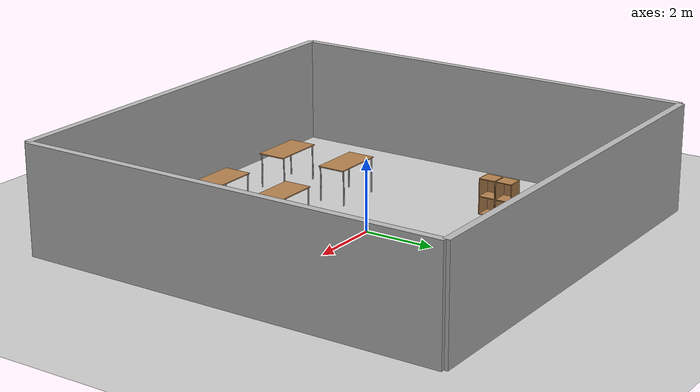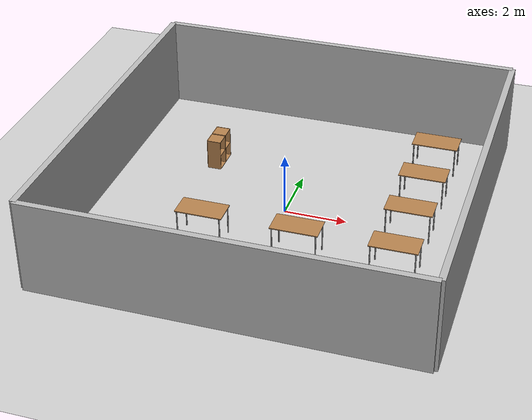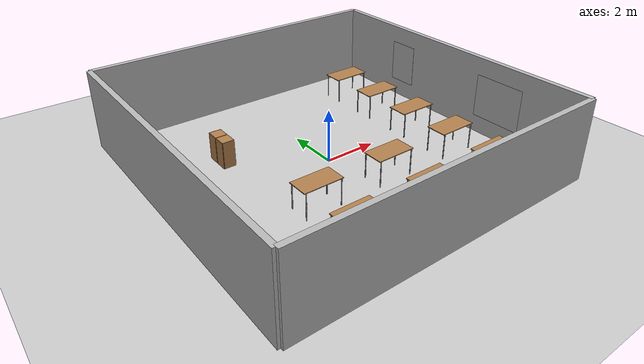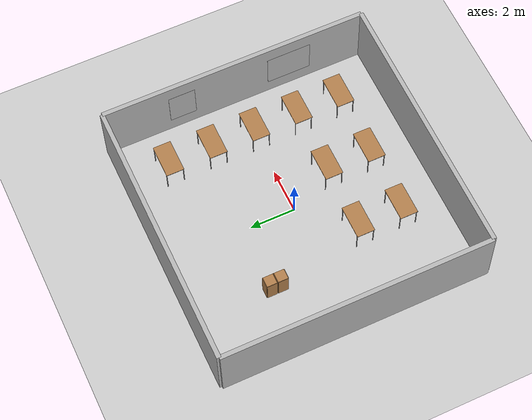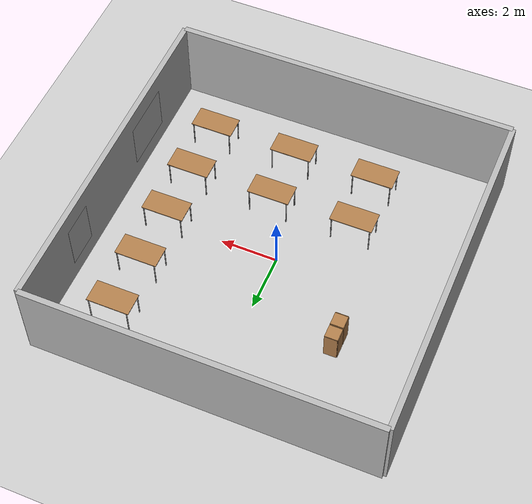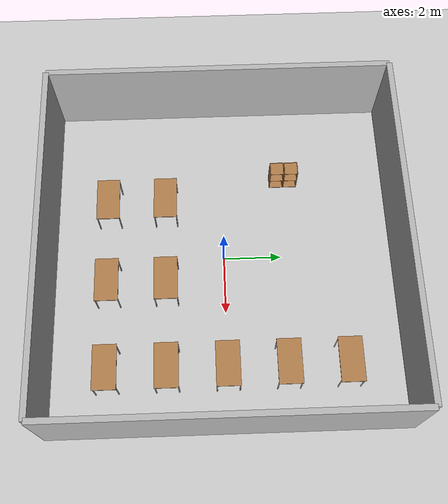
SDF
<sdf version="1.4">
 <world name="default">
  <include><uri>model://sun</uri></include>
  <include><uri>model://ground_plane</uri></include>
  <physics type="ode">
   <max_step_size>0.01</max_step_size>
   <real_time_factor>1</real_time_factor>
   <real_time_update_rate>100</real_time_update_rate>
   <gravity>0 0 -9.8</gravity>
  </physics>
  <include><uri>model://table</uri><name>table1</name><pose>4 0 0 0 0 0</pose></include>
  <include><uri>model://table</uri><name>table2</name><pose>4 2 0 0 0 0</pose></include>
  <include><uri>model://table</uri><name>table3</name><pose>4 4 0 0 0 0</pose></include>
  <include><uri>model://table</uri><name>table4</name><pose>4 -2 0 0 0 0</pose></include>
  <include><uri>model://table</uri><name>table5</name><pose>4 -4 0 0 0 0</pose></include>
  <include><uri>model://table</uri><name>table7</name><pose>1 -2 0 0 0 0</pose></include>
  <include><uri>model://table</uri><name>table8</name><pose>1 -4 0 0 0 0</pose></include>
  <include><uri>model://table</uri><name>table9</name><pose>-2 -2 0 0 0 0</pose></include>
  <include><uri>model://table</uri><name>table10</name><pose>-2 -4 0 0 0 0</pose></include>
  <include><uri>model://cabinet</uri><name>cabinet</name><pose>-3 2 0 0 0 3.1415</pose></include>
  <include><uri>model://cabinet</uri><name>cabinet2</name><pose>-3 2.5 0 0 0 3.1415</pose></include>
  <model name="walls">
   <pose>0 0 1.5 0 0 0</pose>
   <link name="link">
    <collision name="collision">
     <pose>0 6 0 0 0 0</pose>
     <geometry><box><size>12 0.2 3</size></box></geometry>
    </collision>
    <collision name="collision2">
     <pose>0 -6 0 0 0 0</pose>
     <geometry><box><size>12 0.2 3</size></box></geometry>
    </collision>
    <collision name="collision3">
     <pose>6 0 0 0 0 1.5708</pose>
     <geometry><box><size>12 0.2 3</size></box></geometry>
    </collision>
    <collision name="collision4">
     <pose>-6 0 0 0 0 1.5708</pose>
     <geometry><box><size>12 0.2 3</size></box></geometry>
    </collision>
    <visual name="visual"><pose>0 6 0 0 0 0</pose><geometry><box><size>12 0.2 3</size></box></geometry></visual>
    <visual name="visual2"><pose>0 -6 0 0 0 0</pose><geometry><box><size>12 0.2 3</size></box></geometry></visual>
    <visual name="visual3">
     <pose>6 0 0 0 0 1.5708</pose>
     <geometry><box><size>12 0.2 3</size></box></geometry>
    </visual>
    <visual name="visual4">
     <pose>-6 0 0 0 0 1.5708</pose>
     <geometry><box><size>12 0.2 3</size></box></geometry>
    </visual>
   </link>
   <static>1</static>
  </model>
  <model name="poster">
   <pose>5.89 -2.5 1.5 0 1.571 0</pose>
   <link name="link">
    <visual name="visual">
     <geometry><box><size>1.66 2.00 0.001</size></box></geometry>
     <material>
      <script>
       <uri>file:///home/abdul/catkin_ws/src/native-master/native/materials/materials.material</uri>
       <name>Materials/Poster</name>
      </script>
     </material>
    </visual>
   </link>
   <static>1</static>
  </model>
  <model name="poster_groovy">
   <pose>5.89 2.5 1.5 0 1.571 0</pose>
   <link name="link">
    <visual name="visual">
     <geometry><box><size>1.66 1.20 0.005</size></box></geometry>
     <material>
      <script>
       <uri>file:///home/abdul/catkin_ws/src/native-master/native/materials/materials.material</uri>
       <name>Materials/Groovy</name>
      </script>
     </material>
    </visual>
   </link>
   <static>1</static>
  </model>
 </world>
</sdf>

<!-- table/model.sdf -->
<sdf version="1.5">
  <model name="table">
    <static>true</static>
    <link name="link">
      <collision name="surface">
        <pose>0 0 1.0 0 0 0</pose>
        <geometry>
          <box>
            <size>1.5 0.8 0.03</size>
          </box>
        </geometry>
        <surface>
          <friction>
            <ode>
              <mu>0.6</mu>
              <mu2>0.6</mu2>
            </ode>
          </friction>
        </surface>
      </collision>
      <visual name="visual1">
        <pose>0 0 1.0 0 0 0</pose>
        <geometry>
          <box>
            <size>1.5 0.8 0.03</size>
          </box>
        </geometry>
        <material>
          <script>
            <uri>model://media/materials/scripts/gazebo.material</uri>
            <name>Gazebo/Wood</name>
          </script>
        </material>
      </visual>
      <collision name="front_left_leg">
        <pose>0.68 0.38 0.5 0 0 0</pose>
        <geometry>
          <cylinder>
            <radius>0.02</radius>
            <length>1.0</length>
          </cylinder>
        </geometry>
      </collision>
      <visual name="front_left_leg">
        <pose>0.68 0.38 0.5 0 0 0</pose>
        <geometry>
          <cylinder>
            <radius>0.02</radius>
            <length>1.0</length>
          </cylinder>
        </geometry>
        <material>
          <script>
            <uri>model://media/materials/scripts/gazebo.material</uri>
            <name>Gazebo/Grey</name>
          </script>
        </material>
      </visual>
      <collision name="front_right_leg">
        <pose>0.68 -0.38 0.5 0 0 0</pose>
        <geometry>
          <cylinder>
            <radius>0.02</radius>
            <length>1.0</length>
          </cylinder>
        </geometry>
      </collision>
      <visual name="front_right_leg">
        <pose>0.68 -0.38 0.5 0 0 0</pose>
        <geometry>
          <cylinder>
            <radius>0.02</radius>
            <length>1.0</length>
          </cylinder>
        </geometry>
        <material>
          <script>
            <uri>model://media/materials/scripts/gazebo.material</uri>
            <name>Gazebo/Grey</name>
          </script>
        </material>
      </visual>
      <collision name="back_right_leg">
        <pose>-0.68 -0.38 0.5 0 0 0</pose>
        <geometry>
          <cylinder>
            <radius>0.02</radius>
            <length>1.0</length>
          </cylinder>
        </geometry>
      </collision>
      <visual name="back_right_leg">
        <pose>-0.68 -0.38 0.5 0 0 0</pose>
        <geometry>
          <cylinder>
            <radius>0.02</radius>
            <length>1.0</length>
          </cylinder>
        </geometry>
        <material>
          <script>
            <uri>model://media/materials/scripts/gazebo.material</uri>
            <name>Gazebo/Grey</name>
          </script>
        </material>
      </visual>
      <collision name="back_left_leg">
        <pose>-0.68 0.38 0.5 0 0 0</pose>
        <geometry>
          <cylinder>
            <radius>0.02</radius>
            <length>1.0</length>
          </cylinder>
        </geometry>
      </collision>
      <visual name="back_left_leg">
        <pose>-0.68 0.38 0.5 0 0 0</pose>
        <geometry>
          <cylinder>
            <radius>0.02</radius>
            <length>1.0</length>
          </cylinder>
        </geometry>
        <material>
          <script>
            <uri>model://media/materials/scripts/gazebo.material</uri>
            <name>Gazebo/Grey</name>
          </script>
        </material>
      </visual>
    </link>
  </model>
</sdf>

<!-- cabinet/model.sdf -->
<sdf version="1.5">
  <model name="cabinet">
    <static>true</static>
    <link name="cabinet_bottom_plate">
      <inertial>
        <pose>0 0 -1 0 0 0</pose>
        <inertia>
          <ixx>2.050000</ixx>
          <ixy>0</ixy>
          <ixz>0</ixz>
          <iyy>2.050000</iyy>
          <iyz>0</iyz>
          <izz>2.050000</izz>
        </inertia>
        <mass>25.000000</mass>
      </inertial>
      <collision name="cabinet_bottom_plate_geom">
        <pose>0 0 0.010000 0 0 0</pose>
        <geometry>
          <box>
            <size>0.450000 0.450000 0.020000</size>
          </box>
        </geometry>
      </collision>
      <visual name="cabinet_bottom_plate_geom_visual">
        <pose>0 0 0.010000 0 0 0</pose>
        <geometry>
          <box>
            <size>0.450000 0.450000 0.020000</size>
          </box>
        </geometry>
        <material>
          <script>
            <uri>model://media/materials/scripts/gazebo.material</uri>
            <name>Gazebo/Wood</name>
          </script>
        </material>
      </visual>
      <collision name="cabinet_bottom_plate_geom_cabinet_back_plate">
        <pose>0.235000 0 0.510000 0 0 0</pose>
        <geometry>
          <box>
            <size>0.020000 0.450000 1.020000</size>
          </box>
        </geometry>
      </collision>
      <visual name="cabinet_bottom_plate_geom_cabinet_back_plate_visual">
        <pose>0.235000 0 0.510000 0 0 0</pose>
        <geometry>
          <box>
            <size>0.020000 0.450000 1.020000</size>
          </box>
        </geometry>
        <material>
          <script>
            <uri>model://media/materials/scripts/gazebo.material</uri>
            <name>Gazebo/Wood</name>
          </script>
        </material>
      </visual>
      <collision name="cabinet_bottom_plate_geom_cabinet_left_plate">
        <pose>0 0.235000 0.510000 0 0 0</pose>
        <geometry>
          <box>
            <size>0.450000 0.020000 1.020000</size>
          </box>
        </geometry>
      </collision>
      <visual name="cabinet_bottom_plate_geom_cabinet_left_plate_visual">
        <pose>0 0.235000 0.510000 0 0 0</pose>
        <geometry>
          <box>
            <size>0.450000 0.020000 1.020000</size>
          </box>
        </geometry>
        <material>
          <script>
            <uri>model://media/materials/scripts/gazebo.material</uri>
            <name>Gazebo/Wood</name>
          </script>
        </material>
      </visual>
      <collision name="cabinet_bottom_plate_geom_cabinet_middle_plate">
        <pose>0 0 0.510000 0 0 0</pose>
        <geometry>
          <box>
            <size>0.450000 0.450000 0.020000</size>
          </box>
        </geometry>
      </collision>
      <visual name="cabinet_bottom_plate_geom_cabinet_middle_plate_visual">
        <pose>0 0 0.510000 0 0 0</pose>
        <geometry>
          <box>
            <size>0.450000 0.450000 0.020000</size>
          </box>
        </geometry>
        <material>
          <script>
            <uri>model://media/materials/scripts/gazebo.material</uri>
            <name>Gazebo/Wood</name>
          </script>
        </material>
      </visual>
      <collision name="cabinet_bottom_plate_geom_cabinet_right_plate">
        <pose>0 -0.235000 0.510000 0 0 0</pose>
        <geometry>
          <box>
            <size>0.450000 0.020000 1.020000</size>
          </box>
        </geometry>
      </collision>
      <visual name="cabinet_bottom_plate_geom_cabinet_right_plate_visual">
        <pose>0 -0.235000 0.510000 0 0 0</pose>
        <geometry>
          <box>
            <size>0.450000 0.020000 1.020000</size>
          </box>
        </geometry>
        <material>
          <script>
            <uri>model://media/materials/scripts/gazebo.material</uri>
            <name>Gazebo/Wood</name>
          </script>
        </material>
      </visual>
      <collision name="cabinet_bottom_plate_geom_cabinet_top_plate">
        <pose>0 0 1.010000 0 0 0</pose>
        <geometry>
          <box>
            <size>0.450000 0.450000 0.020000</size>
          </box>
        </geometry>
      </collision>
      <visual name="cabinet_bottom_plate_geom_cabinet_top_plate_visual">
        <pose>0 0 1.010000 0 0 0</pose>
        <geometry>
          <box>
            <size>0.450000 0.450000 0.020000</size>
          </box>
        </geometry>
        <material>
          <script>
            <uri>model://media/materials/scripts/gazebo.material</uri>
            <name>Gazebo/Wood</name>
          </script>
        </material>
      </visual>
    </link>
  </model>
</sdf>
